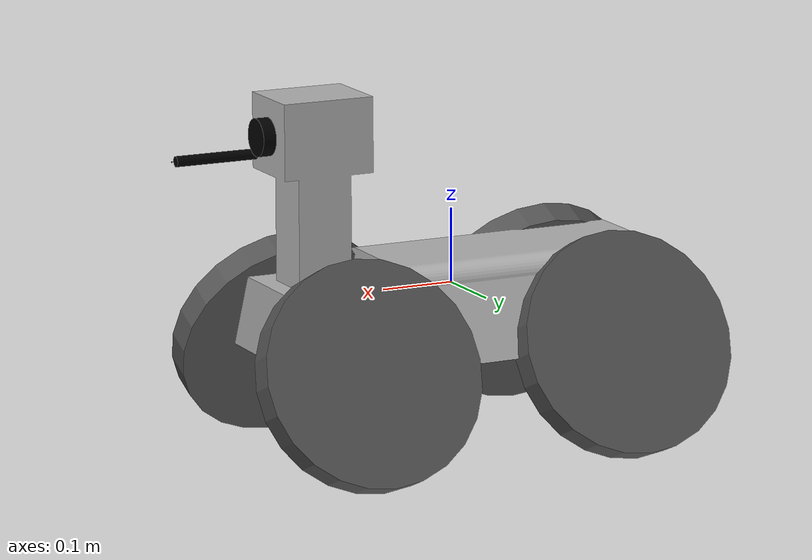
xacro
<?xml version="1.0"?>
<robot name="pipe_sprite" xmlns:xacro="http://www.ros.org/wiki/xacro">

    <xacro:include filename="$(find pipe_description)/urdf/materials.xacro"/>
    <xacro:include filename="$(find pipe_description)/urdf/pipesprite.trans"/>

    <xacro:property name="base_length" value="0.5"/>
    <xacro:property name="base_width" value="0.23"/>
    <xacro:property name="base_height" value="0.1"/>

    <xacro:property name="base_density" value="1"/>    <!-- Approx. density -->
    <xacro:property name="base_mass" value="${base_density*base_length*base_width*base_height}"/>

    <xacro:property name="wheel_radius" value="0.15"/>
    <xacro:property name="wheel_width" value="0.04"/>
    <xacro:property name="wheel_separation" value="${base_width + wheel_width}"/>
    <xacro:property name="wheel_offset" value="${base_length/2 - wheel_radius + .085}"/>

    <xacro:property name="wheel_density" value="100"/>    <!-- Approx. density -->
    <xacro:property name="wheel_mass" value="${wheel_density*(pi*wheel_radius*wheel_radius)*wheel_width}"/>

    <xacro:property name="wheel_joint_rotation" value="1.15"/>

    <xacro:property name="base_ixx" value="${base_mass*(base_width*base_width+base_height*base_height)/12}"/>
    <xacro:property name="base_ixy" value="0.000"/>
    <xacro:property name="base_ixz" value="0.000"/>
    <xacro:property name="base_iyy" value="${base_mass*(base_length*base_length+base_height*base_height)}"/>
    <xacro:property name="base_iyz" value="0.00"/>
    <xacro:property name="base_izz" value="${base_mass*(base_length*base_length+base_height*base_height)}"/>

    <xacro:property name="wheel_ixx" value="${wheel_mass*(3*wheel_radius*wheel_radius+wheel_width*wheel_width)/12}"/>
    <xacro:property name="wheel_ixy" value="0.000"/>
    <xacro:property name="wheel_ixz" value="0.000"/>
    <xacro:property name="wheel_iyy" value="${wheel_mass*(3*wheel_radius*wheel_radius+wheel_width*wheel_width)/12}"/>
    <xacro:property name="wheel_iyz" value="0.00"/>
    <xacro:property name="wheel_izz" value="${wheel_mass*wheel_radius*wheel_radius/2}"/>

    <link name="base_footprint"/>

    <!-- Base Link -->
    <link name="base_link">
        <visual>
            <origin xyz="0.0 0.0 -.08" rpy="0 0.0 0.0"/>
            <geometry>
                <mesh filename="package://pipe_sprite_description/meshes/pipe_sprite_base.stl" scale="0.005 0.005 0.005"/>
            </geometry>
            <material name="silver"/>
        </visual>
        <collision>
            <origin xyz="0.0 0.0 -.08" rpy="0.0 0.0 0.0"/>
            <geometry>
                <mesh filename="package://pipe_sprite_description/meshes/pipe_sprite_base.stl" scale="0.005 0.005 0.005"/>
            </geometry>
        </collision>
        <inertial>
            <origin xyz="0.001 0.001 0.001" rpy="0 0 0"/>
            <mass value="${base_mass}"/>
            <inertia ixx="${base_ixx}" ixy="${base_ixy}" ixz="${base_ixz}"
                iyy="${base_iyy}" iyz="${base_iyz}" izz="${base_izz}"/>
        </inertial>
    </link>

    <joint name="base_footprint_joint" type="fixed">
        <parent link="base_footprint"/>
        <child link="base_link"/>
    </joint>

    <!-- Left Rear Wheel -->
    <link name="left_rear_wheel_link">
        <visual>
            <origin xyz="0.0 0.0 0.0" rpy="0.0 0.0 0.0"/>
            <geometry>
                <cylinder radius="${wheel_radius}" length="${wheel_width}"/>
            </geometry>
            <material name="dark_grey"/>
        </visual>
        <collision>
            <origin xyz="0.0 0.0 0.0" rpy="0.0 0.0 0.0"/>
            <geometry>
                <cylinder radius="${wheel_radius}" length="${wheel_width}"/>
            </geometry>
        </collision>
        <inertial>
            <origin xyz="0.001 0.001 0.001" rpy="0 0 0"/>
            <mass value="${wheel_mass}"/>
            <inertia ixx="${wheel_ixx}" ixy="${wheel_ixy}" ixz="${wheel_ixz}"
                iyy="${wheel_iyy}" iyz="${wheel_iyz}" izz="${wheel_izz}"/>
        </inertial>
    </link>

    <!-- Left Front Wheel -->
    <link name="left_front_wheel_link">
        <visual>
            <origin xyz="0.0 0.0 0.0" rpy="0.0 0.0 0.0"/>
            <geometry>
                <cylinder radius="${wheel_radius}" length="${wheel_width}"/>
            </geometry>
            <material name="dark_grey"/>
        </visual>
        <collision>
            <origin xyz="0.0 0.0 0.0" rpy="0.0 0.0 0.0"/>
            <geometry>
                <cylinder radius="${wheel_radius}" length="${wheel_width}"/>
            </geometry>
        </collision>
        <inertial>
            <origin xyz="0.001 0.001 0.001" rpy="0 0 0"/>
            <mass value="${wheel_mass}"/>
            <inertia ixx="${wheel_ixx}" ixy="${wheel_ixy}" ixz="${wheel_ixz}"
                iyy="${wheel_iyy}" iyz="${wheel_iyz}" izz="${wheel_izz}"/>
        </inertial>
    </link>

    <!-- Right Rear Wheel -->
    <link name="right_rear_wheel_link">
        <visual>
            <origin xyz="0.0 0.0 0.0" rpy="0.0 0.0 0.0"/>
            <geometry>
                <cylinder radius="${wheel_radius}" length="${wheel_width}"/>
            </geometry>
            <material name="dark_grey"/>
        </visual>
        <collision>
            <origin xyz="0.0 0.0 0.0" rpy="0.0 0.0 0.0"/>
            <geometry>
                <cylinder radius="${wheel_radius}" length="${wheel_width}"/>
            </geometry>
        </collision>
        <inertial>
            <origin xyz="0.001 0.001 0.001" rpy="0 0 0"/>
            <mass value="${wheel_mass}"/>
            <inertia ixx="${wheel_ixx}" ixy="${wheel_ixy}" ixz="${wheel_ixz}"
                iyy="${wheel_iyy}" iyz="${wheel_iyz}" izz="${wheel_izz}"/>
        </inertial>
    </link>

    <!-- Right Front Wheel -->
    <link name="right_front_wheel_link">
        <visual>
            <origin xyz="0.0 0.0 0.0" rpy="0.0 0.0 0.0"/>
            <geometry>
                <cylinder radius="${wheel_radius}" length="${wheel_width}"/>
            </geometry>
            <material name="dark_grey"/>
        </visual>
        <collision>
            <origin xyz="0.0 0.0 0.0" rpy="0.0 0.0 0.0"/>
            <geometry>
                <cylinder radius="${wheel_radius}" length="${wheel_width}"/>
            </geometry>
        </collision>
        <inertial>
            <origin xyz="0.001 0.001 0.001" rpy="0 0 0"/>
            <mass value="${wheel_mass}"/>
            <inertia ixx="${wheel_ixx}" ixy="${wheel_ixy}" ixz="${wheel_ixz}"
                iyy="${wheel_iyy}" iyz="${wheel_iyz}" izz="${wheel_izz}"/>
        </inertial>
    </link>

    <!-- Left Rear Wheel Joint -->
    <joint name="left_rear_wheel_joint" type="continuous">
        <origin xyz="-${wheel_offset} ${wheel_separation/2} -${wheel_radius/2}" rpy="-${wheel_joint_rotation} 0 0"/>
        <parent link="base_link"/>
        <child link="left_rear_wheel_link"/>
        <axis xyz="0 0 1"/>
        <limit effort="100" velocity="10.0"/>
        <dynamics damping="0.1" friction="0.1"/>
    </joint>

    <!-- Left Front Wheel Joint -->
    <joint name="left_front_wheel_joint" type="continuous">
        <origin xyz="${wheel_offset} ${wheel_separation/2} -${wheel_radius/2}" rpy="-${wheel_joint_rotation} 0 0"/>
        <parent link="base_link"/>
        <child link="left_front_wheel_link"/>
        <axis xyz="0 0 1"/>
        <limit effort="100" velocity="10.0"/>
        <dynamics damping="0.1" friction="0.1"/>
    </joint>

    <!-- Right Rear Wheel Joint -->
    <joint name="right_rear_wheel_joint" type="continuous">
        <origin xyz="-${wheel_offset} ${-wheel_separation/2} -${wheel_radius/2}" rpy="${wheel_joint_rotation} 0 0"/>
        <parent link="base_link"/>
        <child link="right_rear_wheel_link"/>
        <axis xyz="0 0 1"/>
        <limit effort="100" velocity="10.0"/>
        <dynamics damping="0.1" friction="0.1"/>
    </joint>

    <!-- Right Front Wheel Joint -->
    <joint name="right_front_wheel_joint" type="continuous">
        <origin xyz="${wheel_offset} ${-wheel_separation/2} -${wheel_radius/2}" rpy="${wheel_joint_rotation} 0 0"/>
        <parent link="base_link"/>
        <child link="right_front_wheel_link"/>
        <axis xyz="0 0 1"/>
        <limit effort="100" velocity="10.0"/>
        <dynamics damping="0.1" friction="0.1"/>
    </joint>

    <!-- Camera -->
    <link name="camera_visual_link">
        <visual>
            <origin xyz="0 0 0" rpy="0 ${pi/2} ${pi}"/>
            <geometry>
                <cylinder radius="0.025" length="0.02"/>
            </geometry>
            <material name="black"/>
        </visual>
        <collision>
            <origin xyz="0 0 0" rpy="0 ${pi/2} ${pi}"/>
            <geometry>
                <cylinder radius="0.025" length="0.02"/>
            </geometry>
        </collision>
        <inertial>
            <mass value="0.005"/>
            <origin xyz="0 0 0" rpy="0 ${pi/2} ${pi}"/>
            <inertia ixx="5e-5" ixy="0" ixz="0" iyy="5e-5" iyz="0" izz="5e-5"/>
        </inertial>
    </link>

    <joint name="camera_visual_joint" type="fixed">
        <axis xyz="0 1 0"/>
        <origin xyz=".27 0 .22" rpy="0 0 ${-pi}"/>
        <parent link="base_link"/>
        <child link="camera_visual_link"/>
    </joint>

    <link name="camera_link">
        <visual>
            <origin xyz="0 0 0" rpy="0 ${pi/2} 0"/>
            <geometry>
                <cylinder radius="0.001" length="0.001"/>
            </geometry>
            <material name="black"/>
        </visual>
        <collision>
            <origin xyz="0 0 0" rpy="0 ${pi/2} 0"/>
            <geometry>
                <cylinder radius="0.025" length="0.02"/>
            </geometry>
        </collision>
        <inertial>
            <mass value="0.005"/>
            <origin xyz="0 0 0" rpy="0 ${pi/2} 0"/>
            <inertia ixx="5e-5" ixy="0" ixz="0" iyy="5e-5" iyz="0" izz="5e-5"/>
        </inertial>
    </link>

    <joint name="camera_joint" type="fixed">
        <axis xyz="0 1 0"/>
        <origin xyz="0 0 0" rpy="0 0 ${pi}"/>
        <parent link="camera_visual_link"/>
        <child link="camera_link"/>
    </joint>

    <!-- Laser -->
    <link name="laser_rod_link">
        <visual>
            <origin xyz="0 0 0" rpy="0 ${pi/2} 0"/>
            <geometry>
                <cylinder radius="0.007" length=".15"/>
            </geometry>
            <material name="black"/>
        </visual>
        <collision>
            <origin xyz="0 0 0" rpy="0 ${pi/2} 0"/>
            <geometry>
                <cylinder radius="0.01" length=".7"/>
            </geometry>
        </collision>
        <inertial>
            <mass value="0.005"/>
            <origin xyz="0 0 0" rpy="0 ${pi/2} 0"/>
            <inertia ixx="5e-5" ixy="0" ixz="0" iyy="5e-5" iyz="0" izz="5e-5"/>
        </inertial>
    </link>

    <joint name="laser_rod_joint" type="fixed">
        <axis xyz="0 1 0"/>
        <origin xyz=".30 -.04 .19" rpy="0 0 ${-pi}"/>
        <parent link="base_link"/>
        <child link="laser_rod_link"/>
    </joint>

    <link name="laser_link">
        <visual>
            <origin xyz="0 0 0" rpy="0 ${pi/2} 0"/>
            <geometry>
                <cylinder radius="0.001" length=".001"/>
            </geometry>
            <material name="dark_grey"/>
        </visual>
        <collision>
            <origin xyz="0 0 0" rpy="0 ${pi/2} 0"/>
            <geometry>
                <cylinder radius="0.01" length=".7"/>
            </geometry>
        </collision>
        <inertial>
            <mass value="0.005"/>
            <origin xyz="0 0 0" rpy="0 ${pi/2} 0"/>
            <inertia ixx="5e-5" ixy="0" ixz="0" iyy="5e-5" iyz="0" izz="5e-5"/>
        </inertial>
    </link>

    <joint name="laser_joint" type="fixed">
        <axis xyz="0 1 0"/>
        <origin xyz="-.08 0.0 0.0" rpy="0 0 ${-pi}"/>
        <parent link="laser_rod_link"/>
        <child link="laser_link"/>
    </joint>

    <!-- IMU -->
    <link name="imu_link">
        <collision>
            <origin xyz="0 0 0" rpy="0 0 0"/>
            <geometry>
                <box size="0.015 0.0075 0.0025"/>
            </geometry>
        </collision>
        <visual>
            <origin xyz="0 0 0" rpy="0 0 0"/>
            <geometry>
                <box size="0.015 0.0075 0.0025"/>
            </geometry>
            <material name="black"/>
        </visual>
        <inertial>
            <mass value="0.003"/>
            <origin xyz="0 0 0" rpy="0 0 0"/>
            <inertia ixx="5e-5" ixy="0" ixz="0" iyy="5e-5" iyz="0" izz="5e-5"/>
        </inertial>
    </link>

    <joint name="imu_joint" type="fixed">
        <axis xyz="0 1 0"/>
        <origin xyz="0.0 0.0 0.0" rpy="0 0 0"/>
        <parent link="base_link"/>
        <child link="imu_link"/>
    </joint>

</robot>

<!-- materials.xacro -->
<robot name="pipe_sprite" xmlns:xacro="http://www.ros.org/wiki/xacro">

  <material name="silver">
    <color rgba="0.7 0.7 0.7 1.0"/>
  </material>

  <material name="black">
    <color rgba="0.0 0.0 0.0 1.0"/>
  </material>

  <material name="blue">
    <color rgba="0.0 0.0 0.8 1.0"/>
  </material>

  <material name="green">
    <color rgba="0.0 0.8 0.0 1.0"/>
  </material>

  <material name="grey">
    <color rgba="0.47 0.47 0.47 1.0"/>
  </material>

  <material name="dark_grey">
    <color rgba="0.33 0.33 0.33 1.0"/>
  </material>

  <material name="orange">
    <color rgba="${255/255} ${108/255} ${10/255} 1.0"/>
  </material>

  <material name="brown">
    <color rgba="${222/255} ${207/255} ${195/255} 1.0"/>
  </material>

  <material name="red">
    <color rgba="${157/255} ${18/255} ${8/255} 1.0"/>
  </material>

  <material name="white">
    <color rgba="1.0 1.0 1.0 1.0"/>
  </material>

</robot>
